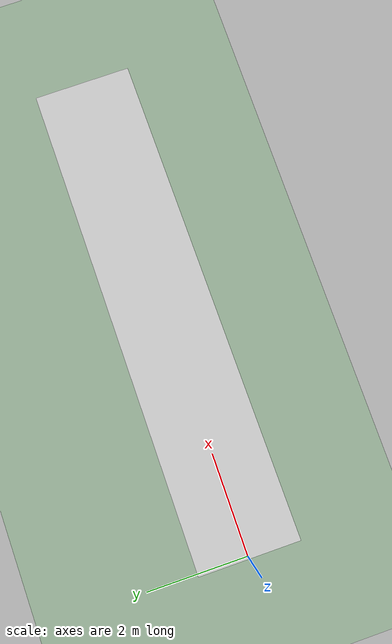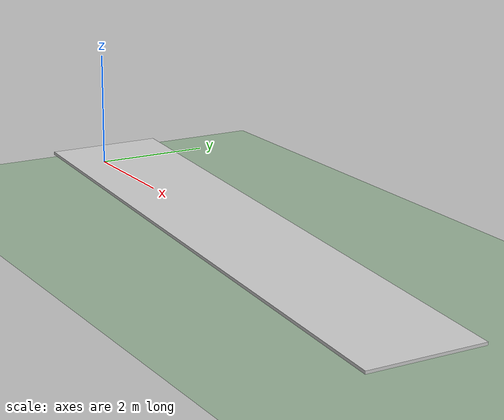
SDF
<?xml version="1.0"?>

<sdf version="1.9">
  <world name="slope_world">

    <physics name="1ms" type="dart">
      <max_step_size>0.001</max_step_size>
      <real_time_factor>1.0</real_time_factor>
    </physics>

    <!-- World gravity (SDF 1.9: gravity is a world-level element, not inside physics) -->
    <gravity>0 0 -9.81</gravity>

    <!-- Required Gazebo plugins -->
    <plugin filename="gz-sim-physics-system"
            name="gz::sim::systems::Physics"/>
    <plugin filename="gz-sim-scene-broadcaster-system"
            name="gz::sim::systems::SceneBroadcaster"/>
    <plugin filename="gz-sim-contact-system"
            name="gz::sim::systems::Contact"/>
    <!-- Required for ros_gz_sim create to spawn models into this world -->
    <plugin filename="gz-sim-user-commands-system"
            name="gz::sim::systems::UserCommands"/>
    <!-- Wrench system: allows yaw_corrector node to apply torques via
         /world/slope_world/wrench topic (gz.msgs.EntityWrench) -->
    <plugin filename="gz-sim-apply-link-wrench-system"
            name="gz::sim::systems::ApplyLinkWrench"/>

    <!-- Guiderails: two cylinders parallel to slope, Z=1.0m, Y=±0.15m, radius=0.005m, length=10m -->

     <!-- Sunlight -->
    <light type="directional" name="sun">
      <pose>0 0 10 0 0 0</pose>
      <diffuse>1 1 1 1</diffuse>
      <specular>0.5 0.5 0.5 1</specular>
      <direction>-0.5 0.1 -0.9</direction>
      <cast_shadows>true</cast_shadows>
    </light>

    <!-- 3.5-degree slope (10m long x 2m wide) -->
    <model name="slope">
      <static>true</static>
      <!-- Rotate -3.5 degrees about Y axis = downward slope in X direction -->
      <pose>5 0 0 0 0.0611 0</pose>
      <link name="slope_link">
        <collision name="collision">
          <geometry>
            <box>
              <size>10 2 0.05</size>
            </box>
          </geometry>
          <surface>
            <friction>
              <ode>
                <!-- High friction for passive walking (must match or exceed foot mu) -->
                <mu>70.0</mu>
                <mu2>70.0</mu2>
              </ode>
            </friction>
            <contact>
              <ode>
                <!-- Hard contact - stiff floor -->
                <kp>1000000.0</kp>
                <kd>100.0</kd>
                <max_vel>0.1</max_vel>
                <min_depth>0.001</min_depth>
              </ode>
            </contact>
          </surface>
        </collision>
        <visual name="visual">
          <geometry>
            <box>
              <size>10 2 0.05</size>
            </box>
          </geometry>
          <material>
            <ambient>0.7 0.7 0.7 1</ambient>
            <diffuse>0.8 0.8 0.8 1</diffuse>
          </material>
        </visual>
      </link>
    </model>

    <model name="ground_plane">
      <static>true</static>
      <link name="link">
        <collision name="collision">
          <geometry>
            <plane>
              <normal>0 0 1</normal>
              <size>100 100</size>
            </plane>
          </geometry>
          <surface>
            <friction>
              <ode>
                <mu>1.0</mu>
                <mu2>1.0</mu2>
              </ode>
            </friction>
          </surface>
        </collision>
        <visual name="visual">
          <geometry>
            <plane>
              <normal>0 0 1</normal>
              <size>100 100</size>
            </plane>
          </geometry>
          <material>
            <ambient>0.5 0.6 0.5 1</ambient>
            <diffuse>0.6 0.7 0.6 1</diffuse>
          </material>
        </visual>
      </link>
      <pose>0 0 -0.4 0 0 0</pose>
    </model>

  </world>
</sdf>
